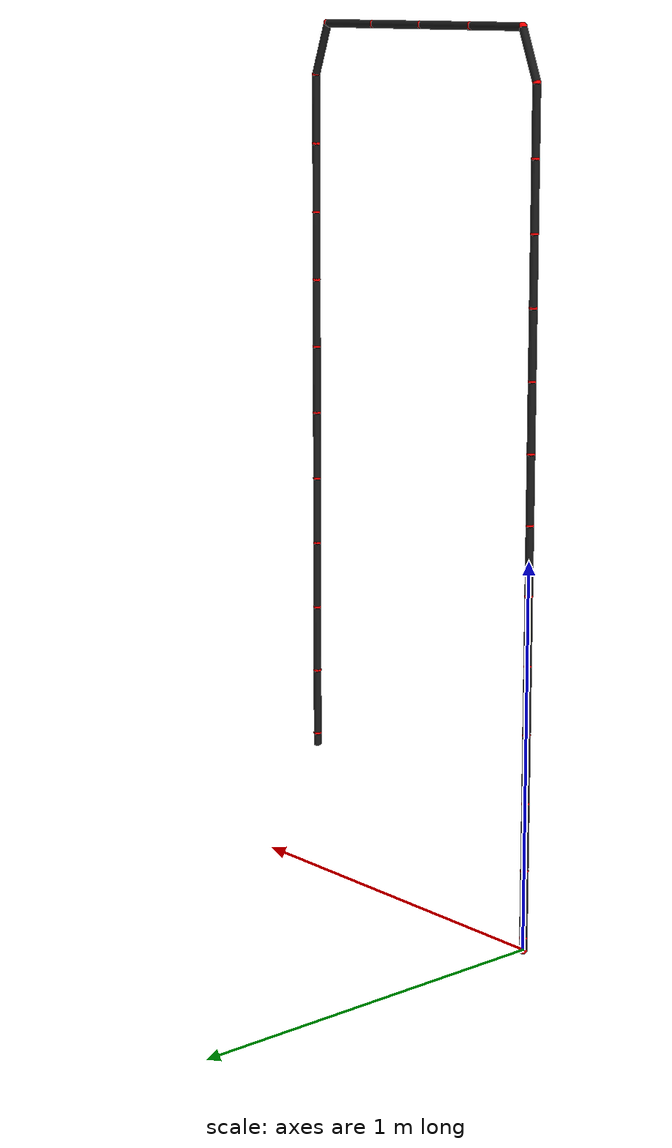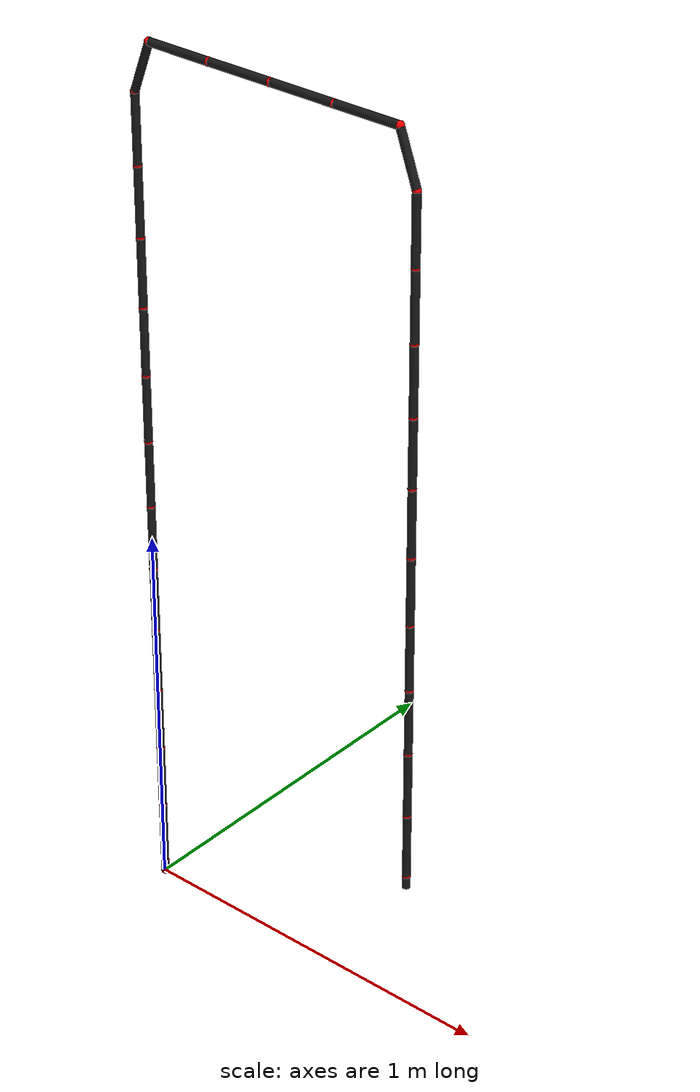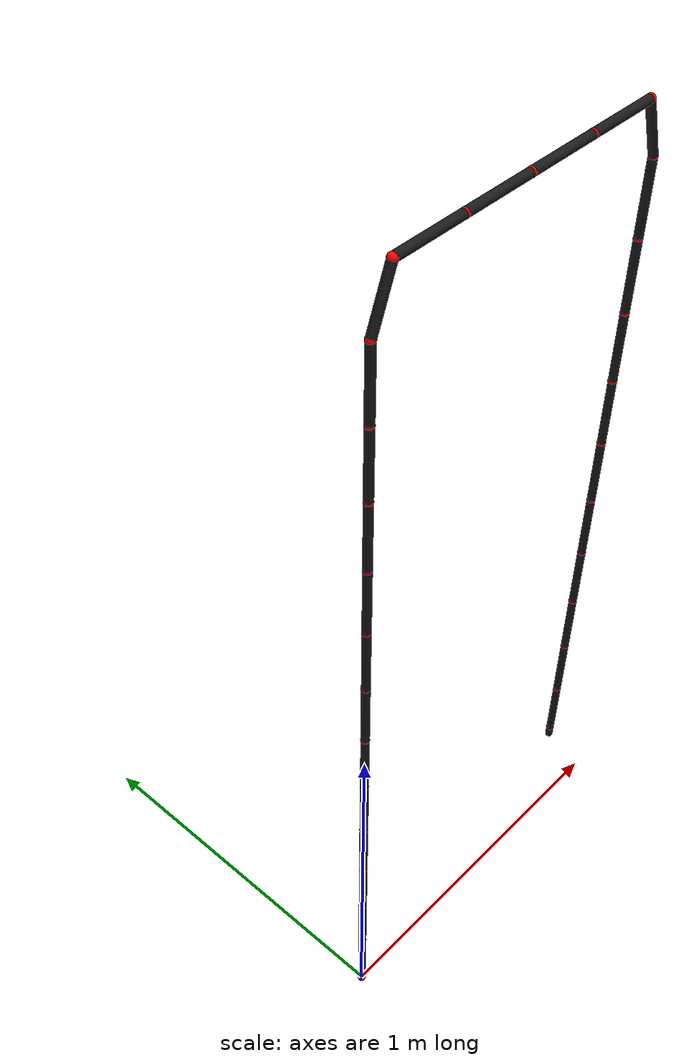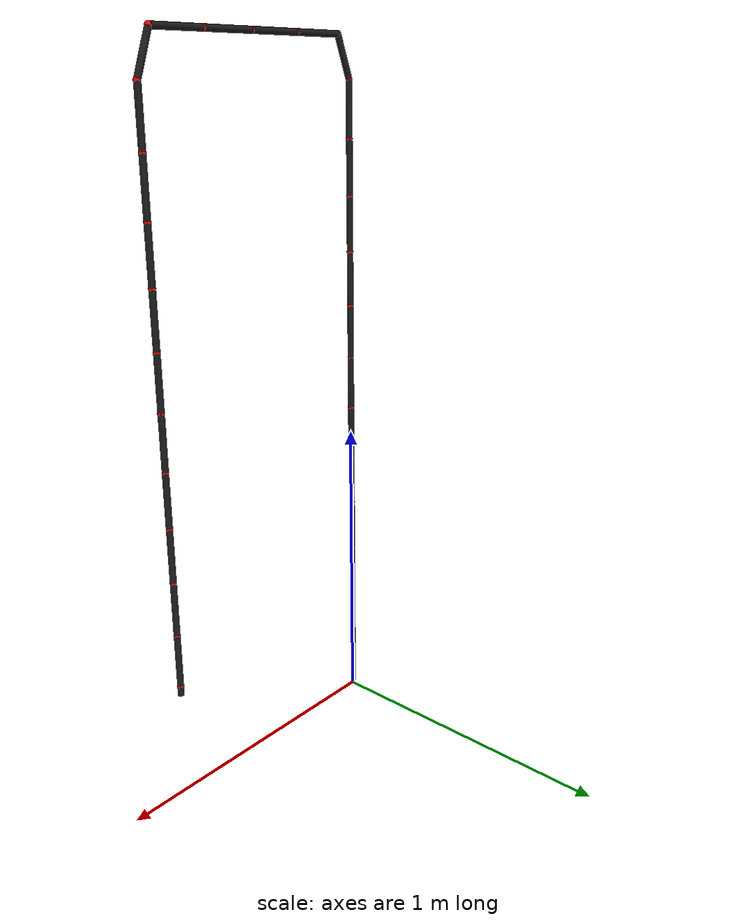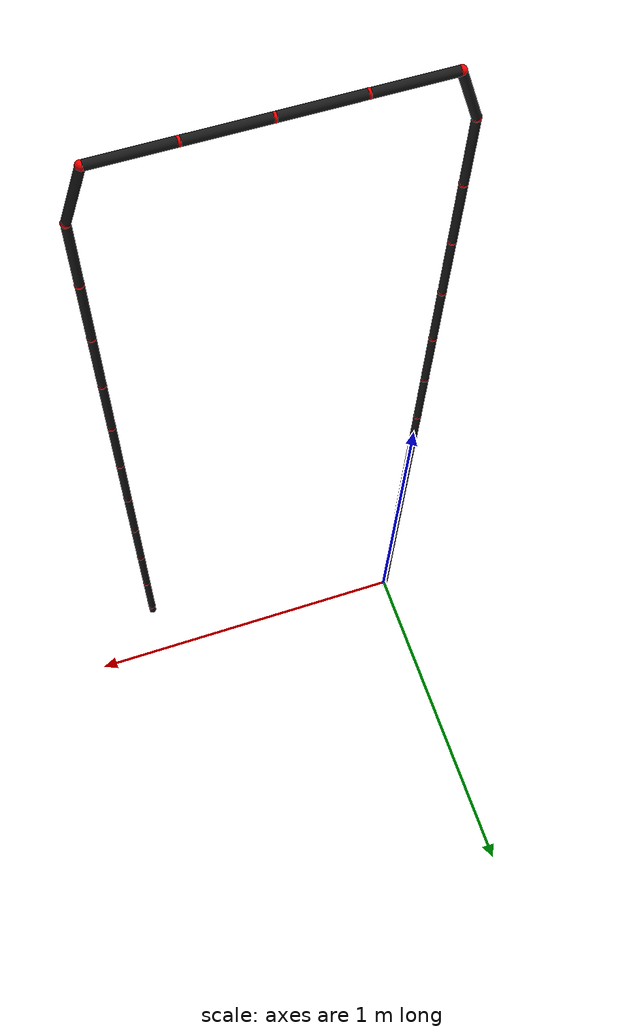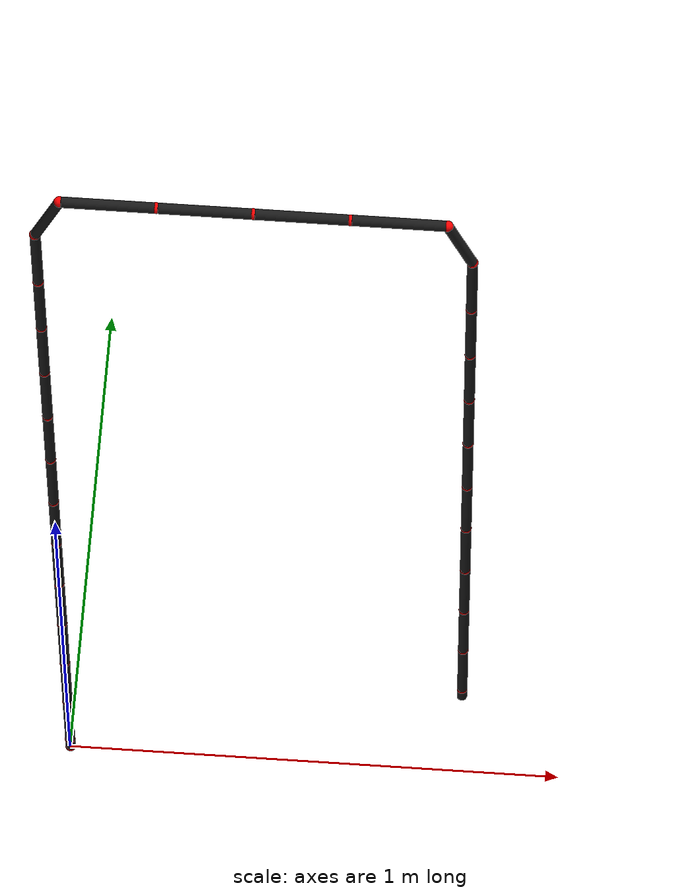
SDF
<?xml version="1.0" ?>
<sdf version="1.9">
    <model name="tether">
        <self_collide>true</self_collide>

        <link name="link_0">
            <pose>0.0000 0.0000 0.0167 0 0.0000 0.0000</pose>
            <velocity_decay>
                <linear>0.5</linear>
                <angular>0.5</angular>
            </velocity_decay>
            <inertial>
                <mass>0.02</mass>
                <inertia>
                    <ixx>0.1000</ixx><ixy>0</ixy><ixz>0</ixz>
                    <iyy>0.1000</iyy><iyz>0</iyz>
                    <izz>0.0100</izz>
                </inertia>
            </inertial>
            <visual name="visual_cylinder">
                <geometry><cylinder><radius>0.01</radius><length>0.0333</length></cylinder></geometry>
                <material><ambient>0.2 0.2 0.2 1</ambient><diffuse>0.1 0.1 0.1 1</diffuse></material>
            </visual>
            <visual name="visual_joint">
                <pose>0 0 -0.0167 0 0 0</pose>
                <geometry><sphere><radius>0.0105</radius></sphere></geometry>
                <material><ambient>1 0 0 1</ambient><diffuse>1 0 0 1</diffuse></material>
            </visual>
            <collision name="collision">
                <geometry><cylinder><radius>0.01</radius><length>0.0333</length></cylinder></geometry>
                <surface>
                    <contact><collide_bitmask>0x02</collide_bitmask></contact>
                </surface>
            </collision>
        </link>
        <link name="link_1">
            <pose>0.0000 0.0000 0.1214 0 0.0000 0.0000</pose>
            <velocity_decay>
                <linear>0.5</linear>
                <angular>0.5</angular>
            </velocity_decay>
            <inertial>
                <mass>0.02</mass>
                <inertia>
                    <ixx>0.1000</ixx><ixy>0</ixy><ixz>0</ixz>
                    <iyy>0.1000</iyy><iyz>0</iyz>
                    <izz>0.0100</izz>
                </inertia>
            </inertial>
            <visual name="visual_cylinder">
                <geometry><cylinder><radius>0.01</radius><length>0.1762</length></cylinder></geometry>
                <material><ambient>0.2 0.2 0.2 1</ambient><diffuse>0.1 0.1 0.1 1</diffuse></material>
            </visual>
            <visual name="visual_joint">
                <pose>0 0 -0.0881 0 0 0</pose>
                <geometry><sphere><radius>0.0105</radius></sphere></geometry>
                <material><ambient>1 0 0 1</ambient><diffuse>1 0 0 1</diffuse></material>
            </visual>
            <collision name="collision">
                <geometry><cylinder><radius>0.01</radius><length>0.1762</length></cylinder></geometry>
                <surface>
                    <contact><collide_bitmask>0x02</collide_bitmask></contact>
                </surface>
            </collision>
        </link>
        <joint name="joint_0_1" type="ball">
            <parent>link_0</parent>
            <child>link_1</child>
            <pose>0 0 -0.0881 0 0 0</pose>
            <dynamics>
                <damping>2.0</damping>
                <friction>0.1</friction>
            </dynamics>
        </joint>
        <link name="link_2">
            <pose>0.0000 0.0000 0.2976 0 0.0000 0.0000</pose>
            <velocity_decay>
                <linear>0.5</linear>
                <angular>0.5</angular>
            </velocity_decay>
            <inertial>
                <mass>0.02</mass>
                <inertia>
                    <ixx>0.1000</ixx><ixy>0</ixy><ixz>0</ixz>
                    <iyy>0.1000</iyy><iyz>0</iyz>
                    <izz>0.0100</izz>
                </inertia>
            </inertial>
            <visual name="visual_cylinder">
                <geometry><cylinder><radius>0.01</radius><length>0.1762</length></cylinder></geometry>
                <material><ambient>0.2 0.2 0.2 1</ambient><diffuse>0.1 0.1 0.1 1</diffuse></material>
            </visual>
            <visual name="visual_joint">
                <pose>0 0 -0.0881 0 0 0</pose>
                <geometry><sphere><radius>0.0105</radius></sphere></geometry>
                <material><ambient>1 0 0 1</ambient><diffuse>1 0 0 1</diffuse></material>
            </visual>
            <collision name="collision">
                <geometry><cylinder><radius>0.01</radius><length>0.1762</length></cylinder></geometry>
                <surface>
                    <contact><collide_bitmask>0x02</collide_bitmask></contact>
                </surface>
            </collision>
        </link>
        <joint name="joint_1_2" type="ball">
            <parent>link_1</parent>
            <child>link_2</child>
            <pose>0 0 -0.0881 0 0 0</pose>
            <dynamics>
                <damping>2.0</damping>
                <friction>0.1</friction>
            </dynamics>
        </joint>
        <link name="link_3">
            <pose>0.0000 0.0000 0.4738 0 0.0000 0.0000</pose>
            <velocity_decay>
                <linear>0.5</linear>
                <angular>0.5</angular>
            </velocity_decay>
            <inertial>
                <mass>0.02</mass>
                <inertia>
                    <ixx>0.1000</ixx><ixy>0</ixy><ixz>0</ixz>
                    <iyy>0.1000</iyy><iyz>0</iyz>
                    <izz>0.0100</izz>
                </inertia>
            </inertial>
            <visual name="visual_cylinder">
                <geometry><cylinder><radius>0.01</radius><length>0.1762</length></cylinder></geometry>
                <material><ambient>0.2 0.2 0.2 1</ambient><diffuse>0.1 0.1 0.1 1</diffuse></material>
            </visual>
            <visual name="visual_joint">
                <pose>0 0 -0.0881 0 0 0</pose>
                <geometry><sphere><radius>0.0105</radius></sphere></geometry>
                <material><ambient>1 0 0 1</ambient><diffuse>1 0 0 1</diffuse></material>
            </visual>
            <collision name="collision">
                <geometry><cylinder><radius>0.01</radius><length>0.1762</length></cylinder></geometry>
                <surface>
                    <contact><collide_bitmask>0x02</collide_bitmask></contact>
                </surface>
            </collision>
        </link>
        <joint name="joint_2_3" type="ball">
            <parent>link_2</parent>
            <child>link_3</child>
            <pose>0 0 -0.0881 0 0 0</pose>
            <dynamics>
                <damping>2.0</damping>
                <friction>0.1</friction>
            </dynamics>
        </joint>
        <link name="link_4">
            <pose>0.0000 0.0000 0.6500 0 0.0000 0.0000</pose>
            <velocity_decay>
                <linear>0.5</linear>
                <angular>0.5</angular>
            </velocity_decay>
            <inertial>
                <mass>0.02</mass>
                <inertia>
                    <ixx>0.1000</ixx><ixy>0</ixy><ixz>0</ixz>
                    <iyy>0.1000</iyy><iyz>0</iyz>
                    <izz>0.0100</izz>
                </inertia>
            </inertial>
            <visual name="visual_cylinder">
                <geometry><cylinder><radius>0.01</radius><length>0.1762</length></cylinder></geometry>
                <material><ambient>0.2 0.2 0.2 1</ambient><diffuse>0.1 0.1 0.1 1</diffuse></material>
            </visual>
            <visual name="visual_joint">
                <pose>0 0 -0.0881 0 0 0</pose>
                <geometry><sphere><radius>0.0105</radius></sphere></geometry>
                <material><ambient>1 0 0 1</ambient><diffuse>1 0 0 1</diffuse></material>
            </visual>
            <collision name="collision">
                <geometry><cylinder><radius>0.01</radius><length>0.1762</length></cylinder></geometry>
                <surface>
                    <contact><collide_bitmask>0x02</collide_bitmask></contact>
                </surface>
            </collision>
        </link>
        <joint name="joint_3_4" type="ball">
            <parent>link_3</parent>
            <child>link_4</child>
            <pose>0 0 -0.0881 0 0 0</pose>
            <dynamics>
                <damping>2.0</damping>
                <friction>0.1</friction>
            </dynamics>
        </joint>
        <link name="link_5">
            <pose>0.0000 0.0000 0.8262 0 0.0000 0.0000</pose>
            <velocity_decay>
                <linear>0.5</linear>
                <angular>0.5</angular>
            </velocity_decay>
            <inertial>
                <mass>0.02</mass>
                <inertia>
                    <ixx>0.1000</ixx><ixy>0</ixy><ixz>0</ixz>
                    <iyy>0.1000</iyy><iyz>0</iyz>
                    <izz>0.0100</izz>
                </inertia>
            </inertial>
            <visual name="visual_cylinder">
                <geometry><cylinder><radius>0.01</radius><length>0.1762</length></cylinder></geometry>
                <material><ambient>0.2 0.2 0.2 1</ambient><diffuse>0.1 0.1 0.1 1</diffuse></material>
            </visual>
            <visual name="visual_joint">
                <pose>0 0 -0.0881 0 0 0</pose>
                <geometry><sphere><radius>0.0105</radius></sphere></geometry>
                <material><ambient>1 0 0 1</ambient><diffuse>1 0 0 1</diffuse></material>
            </visual>
            <collision name="collision">
                <geometry><cylinder><radius>0.01</radius><length>0.1762</length></cylinder></geometry>
                <surface>
                    <contact><collide_bitmask>0x02</collide_bitmask></contact>
                </surface>
            </collision>
        </link>
        <joint name="joint_4_5" type="ball">
            <parent>link_4</parent>
            <child>link_5</child>
            <pose>0 0 -0.0881 0 0 0</pose>
            <dynamics>
                <damping>2.0</damping>
                <friction>0.1</friction>
            </dynamics>
        </joint>
        <link name="link_6">
            <pose>0.0000 0.0000 1.0024 0 0.0000 0.0000</pose>
            <velocity_decay>
                <linear>0.5</linear>
                <angular>0.5</angular>
            </velocity_decay>
            <inertial>
                <mass>0.02</mass>
                <inertia>
                    <ixx>0.1000</ixx><ixy>0</ixy><ixz>0</ixz>
                    <iyy>0.1000</iyy><iyz>0</iyz>
                    <izz>0.0100</izz>
                </inertia>
            </inertial>
            <visual name="visual_cylinder">
                <geometry><cylinder><radius>0.01</radius><length>0.1762</length></cylinder></geometry>
                <material><ambient>0.2 0.2 0.2 1</ambient><diffuse>0.1 0.1 0.1 1</diffuse></material>
            </visual>
            <visual name="visual_joint">
                <pose>0 0 -0.0881 0 0 0</pose>
                <geometry><sphere><radius>0.0105</radius></sphere></geometry>
                <material><ambient>1 0 0 1</ambient><diffuse>1 0 0 1</diffuse></material>
            </visual>
            <collision name="collision">
                <geometry><cylinder><radius>0.01</radius><length>0.1762</length></cylinder></geometry>
                <surface>
                    <contact><collide_bitmask>0x02</collide_bitmask></contact>
                </surface>
            </collision>
        </link>
        <joint name="joint_5_6" type="ball">
            <parent>link_5</parent>
            <child>link_6</child>
            <pose>0 0 -0.0881 0 0 0</pose>
            <dynamics>
                <damping>2.0</damping>
                <friction>0.1</friction>
            </dynamics>
        </joint>
        <link name="link_7">
            <pose>0.0000 0.0000 1.1786 0 0.0000 0.0000</pose>
            <velocity_decay>
                <linear>0.5</linear>
                <angular>0.5</angular>
            </velocity_decay>
            <inertial>
                <mass>0.02</mass>
                <inertia>
                    <ixx>0.1000</ixx><ixy>0</ixy><ixz>0</ixz>
                    <iyy>0.1000</iyy><iyz>0</iyz>
                    <izz>0.0100</izz>
                </inertia>
            </inertial>
            <visual name="visual_cylinder">
                <geometry><cylinder><radius>0.01</radius><length>0.1762</length></cylinder></geometry>
                <material><ambient>0.2 0.2 0.2 1</ambient><diffuse>0.1 0.1 0.1 1</diffuse></material>
            </visual>
            <visual name="visual_joint">
                <pose>0 0 -0.0881 0 0 0</pose>
                <geometry><sphere><radius>0.0105</radius></sphere></geometry>
                <material><ambient>1 0 0 1</ambient><diffuse>1 0 0 1</diffuse></material>
            </visual>
            <collision name="collision">
                <geometry><cylinder><radius>0.01</radius><length>0.1762</length></cylinder></geometry>
                <surface>
                    <contact><collide_bitmask>0x02</collide_bitmask></contact>
                </surface>
            </collision>
        </link>
        <joint name="joint_6_7" type="ball">
            <parent>link_6</parent>
            <child>link_7</child>
            <pose>0 0 -0.0881 0 0 0</pose>
            <dynamics>
                <damping>2.0</damping>
                <friction>0.1</friction>
            </dynamics>
        </joint>
        <link name="link_8">
            <pose>0.0000 0.0000 1.3548 0 0.0000 0.0000</pose>
            <velocity_decay>
                <linear>0.5</linear>
                <angular>0.5</angular>
            </velocity_decay>
            <inertial>
                <mass>0.02</mass>
                <inertia>
                    <ixx>0.1000</ixx><ixy>0</ixy><ixz>0</ixz>
                    <iyy>0.1000</iyy><iyz>0</iyz>
                    <izz>0.0100</izz>
                </inertia>
            </inertial>
            <visual name="visual_cylinder">
                <geometry><cylinder><radius>0.01</radius><length>0.1762</length></cylinder></geometry>
                <material><ambient>0.2 0.2 0.2 1</ambient><diffuse>0.1 0.1 0.1 1</diffuse></material>
            </visual>
            <visual name="visual_joint">
                <pose>0 0 -0.0881 0 0 0</pose>
                <geometry><sphere><radius>0.0105</radius></sphere></geometry>
                <material><ambient>1 0 0 1</ambient><diffuse>1 0 0 1</diffuse></material>
            </visual>
            <collision name="collision">
                <geometry><cylinder><radius>0.01</radius><length>0.1762</length></cylinder></geometry>
                <surface>
                    <contact><collide_bitmask>0x02</collide_bitmask></contact>
                </surface>
            </collision>
        </link>
        <joint name="joint_7_8" type="ball">
            <parent>link_7</parent>
            <child>link_8</child>
            <pose>0 0 -0.0881 0 0 0</pose>
            <dynamics>
                <damping>2.0</damping>
                <friction>0.1</friction>
            </dynamics>
        </joint>
        <link name="link_9">
            <pose>0.0000 0.0000 1.5310 0 0.0000 0.0000</pose>
            <velocity_decay>
                <linear>0.5</linear>
                <angular>0.5</angular>
            </velocity_decay>
            <inertial>
                <mass>0.02</mass>
                <inertia>
                    <ixx>0.1000</ixx><ixy>0</ixy><ixz>0</ixz>
                    <iyy>0.1000</iyy><iyz>0</iyz>
                    <izz>0.0100</izz>
                </inertia>
            </inertial>
            <visual name="visual_cylinder">
                <geometry><cylinder><radius>0.01</radius><length>0.1762</length></cylinder></geometry>
                <material><ambient>0.2 0.2 0.2 1</ambient><diffuse>0.1 0.1 0.1 1</diffuse></material>
            </visual>
            <visual name="visual_joint">
                <pose>0 0 -0.0881 0 0 0</pose>
                <geometry><sphere><radius>0.0105</radius></sphere></geometry>
                <material><ambient>1 0 0 1</ambient><diffuse>1 0 0 1</diffuse></material>
            </visual>
            <collision name="collision">
                <geometry><cylinder><radius>0.01</radius><length>0.1762</length></cylinder></geometry>
                <surface>
                    <contact><collide_bitmask>0x02</collide_bitmask></contact>
                </surface>
            </collision>
        </link>
        <joint name="joint_8_9" type="ball">
            <parent>link_8</parent>
            <child>link_9</child>
            <pose>0 0 -0.0881 0 0 0</pose>
            <dynamics>
                <damping>2.0</damping>
                <friction>0.1</friction>
            </dynamics>
        </joint>
        <link name="link_10">
            <pose>0.0000 0.0000 1.7071 0 0.0000 0.0000</pose>
            <velocity_decay>
                <linear>0.5</linear>
                <angular>0.5</angular>
            </velocity_decay>
            <inertial>
                <mass>0.02</mass>
                <inertia>
                    <ixx>0.1000</ixx><ixy>0</ixy><ixz>0</ixz>
                    <iyy>0.1000</iyy><iyz>0</iyz>
                    <izz>0.0100</izz>
                </inertia>
            </inertial>
            <visual name="visual_cylinder">
                <geometry><cylinder><radius>0.01</radius><length>0.1762</length></cylinder></geometry>
                <material><ambient>0.2 0.2 0.2 1</ambient><diffuse>0.1 0.1 0.1 1</diffuse></material>
            </visual>
            <visual name="visual_joint">
                <pose>0 0 -0.0881 0 0 0</pose>
                <geometry><sphere><radius>0.0105</radius></sphere></geometry>
                <material><ambient>1 0 0 1</ambient><diffuse>1 0 0 1</diffuse></material>
            </visual>
            <collision name="collision">
                <geometry><cylinder><radius>0.01</radius><length>0.1762</length></cylinder></geometry>
                <surface>
                    <contact><collide_bitmask>0x02</collide_bitmask></contact>
                </surface>
            </collision>
        </link>
        <joint name="joint_9_10" type="ball">
            <parent>link_9</parent>
            <child>link_10</child>
            <pose>0 0 -0.0881 0 0 0</pose>
            <dynamics>
                <damping>2.0</damping>
                <friction>0.1</friction>
            </dynamics>
        </joint>
        <link name="link_11">
            <pose>0.0000 0.0000 1.8833 0 0.0000 0.0000</pose>
            <velocity_decay>
                <linear>0.5</linear>
                <angular>0.5</angular>
            </velocity_decay>
            <inertial>
                <mass>0.02</mass>
                <inertia>
                    <ixx>0.1000</ixx><ixy>0</ixy><ixz>0</ixz>
                    <iyy>0.1000</iyy><iyz>0</iyz>
                    <izz>0.0100</izz>
                </inertia>
            </inertial>
            <visual name="visual_cylinder">
                <geometry><cylinder><radius>0.01</radius><length>0.1762</length></cylinder></geometry>
                <material><ambient>0.2 0.2 0.2 1</ambient><diffuse>0.1 0.1 0.1 1</diffuse></material>
            </visual>
            <visual name="visual_joint">
                <pose>0 0 -0.0881 0 0 0</pose>
                <geometry><sphere><radius>0.0105</radius></sphere></geometry>
                <material><ambient>1 0 0 1</ambient><diffuse>1 0 0 1</diffuse></material>
            </visual>
            <collision name="collision">
                <geometry><cylinder><radius>0.01</radius><length>0.1762</length></cylinder></geometry>
                <surface>
                    <contact><collide_bitmask>0x02</collide_bitmask></contact>
                </surface>
            </collision>
        </link>
        <joint name="joint_10_11" type="ball">
            <parent>link_10</parent>
            <child>link_11</child>
            <pose>0 0 -0.0881 0 0 0</pose>
            <dynamics>
                <damping>2.0</damping>
                <friction>0.1</friction>
            </dynamics>
        </joint>
        <link name="link_12">
            <pose>0.0000 0.0000 2.0595 0 0.0000 0.0000</pose>
            <velocity_decay>
                <linear>0.5</linear>
                <angular>0.5</angular>
            </velocity_decay>
            <inertial>
                <mass>0.02</mass>
                <inertia>
                    <ixx>0.1000</ixx><ixy>0</ixy><ixz>0</ixz>
                    <iyy>0.1000</iyy><iyz>0</iyz>
                    <izz>0.0100</izz>
                </inertia>
            </inertial>
            <visual name="visual_cylinder">
                <geometry><cylinder><radius>0.01</radius><length>0.1762</length></cylinder></geometry>
                <material><ambient>0.2 0.2 0.2 1</ambient><diffuse>0.1 0.1 0.1 1</diffuse></material>
            </visual>
            <visual name="visual_joint">
                <pose>0 0 -0.0881 0 0 0</pose>
                <geometry><sphere><radius>0.0105</radius></sphere></geometry>
                <material><ambient>1 0 0 1</ambient><diffuse>1 0 0 1</diffuse></material>
            </visual>
            <collision name="collision">
                <geometry><cylinder><radius>0.01</radius><length>0.1762</length></cylinder></geometry>
                <surface>
                    <contact><collide_bitmask>0x02</collide_bitmask></contact>
                </surface>
            </collision>
        </link>
        <joint name="joint_11_12" type="ball">
            <parent>link_11</parent>
            <child>link_12</child>
            <pose>0 0 -0.0881 0 0 0</pose>
            <dynamics>
                <damping>2.0</damping>
                <friction>0.1</friction>
            </dynamics>
        </joint>
        <link name="link_13">
            <pose>0.0244 0.0000 2.2113 0 0.3659 0.0000</pose>
            <velocity_decay>
                <linear>0.5</linear>
                <angular>0.5</angular>
            </velocity_decay>
            <inertial>
                <mass>0.02</mass>
                <inertia>
                    <ixx>0.1000</ixx><ixy>0</ixy><ixz>0</ixz>
                    <iyy>0.1000</iyy><iyz>0</iyz>
                    <izz>0.0100</izz>
                </inertia>
            </inertial>
            <visual name="visual_cylinder">
                <geometry><cylinder><radius>0.01</radius><length>0.1364</length></cylinder></geometry>
                <material><ambient>0.2 0.2 0.2 1</ambient><diffuse>0.1 0.1 0.1 1</diffuse></material>
            </visual>
            <visual name="visual_joint">
                <pose>0 0 -0.0682 0 0 0</pose>
                <geometry><sphere><radius>0.0105</radius></sphere></geometry>
                <material><ambient>1 0 0 1</ambient><diffuse>1 0 0 1</diffuse></material>
            </visual>
            <collision name="collision">
                <geometry><cylinder><radius>0.01</radius><length>0.1364</length></cylinder></geometry>
                <surface>
                    <contact><collide_bitmask>0x02</collide_bitmask></contact>
                </surface>
            </collision>
        </link>
        <joint name="joint_12_13" type="ball">
            <parent>link_12</parent>
            <child>link_13</child>
            <pose>0 0 -0.0682 0 0 0</pose>
            <dynamics>
                <damping>2.0</damping>
                <friction>0.1</friction>
            </dynamics>
        </joint>
        <link name="link_14">
            <pose>0.1369 0.0000 2.2750 0 1.5708 0.0000</pose>
            <velocity_decay>
                <linear>0.5</linear>
                <angular>0.5</angular>
            </velocity_decay>
            <inertial>
                <mass>0.02</mass>
                <inertia>
                    <ixx>0.1000</ixx><ixy>0</ixy><ixz>0</ixz>
                    <iyy>0.1000</iyy><iyz>0</iyz>
                    <izz>0.0100</izz>
                </inertia>
            </inertial>
            <visual name="visual_cylinder">
                <geometry><cylinder><radius>0.01</radius><length>0.1762</length></cylinder></geometry>
                <material><ambient>0.2 0.2 0.2 1</ambient><diffuse>0.1 0.1 0.1 1</diffuse></material>
            </visual>
            <visual name="visual_joint">
                <pose>0 0 -0.0881 0 0 0</pose>
                <geometry><sphere><radius>0.0105</radius></sphere></geometry>
                <material><ambient>1 0 0 1</ambient><diffuse>1 0 0 1</diffuse></material>
            </visual>
            <collision name="collision">
                <geometry><cylinder><radius>0.01</radius><length>0.1762</length></cylinder></geometry>
                <surface>
                    <contact><collide_bitmask>0x02</collide_bitmask></contact>
                </surface>
            </collision>
        </link>
        <joint name="joint_13_14" type="ball">
            <parent>link_13</parent>
            <child>link_14</child>
            <pose>0 0 -0.0881 0 0 0</pose>
            <dynamics>
                <damping>2.0</damping>
                <friction>0.1</friction>
            </dynamics>
        </joint>
        <link name="link_15">
            <pose>0.3131 0.0000 2.2750 0 1.5708 0.0000</pose>
            <velocity_decay>
                <linear>0.5</linear>
                <angular>0.5</angular>
            </velocity_decay>
            <inertial>
                <mass>0.02</mass>
                <inertia>
                    <ixx>0.1000</ixx><ixy>0</ixy><ixz>0</ixz>
                    <iyy>0.1000</iyy><iyz>0</iyz>
                    <izz>0.0100</izz>
                </inertia>
            </inertial>
            <visual name="visual_cylinder">
                <geometry><cylinder><radius>0.01</radius><length>0.1762</length></cylinder></geometry>
                <material><ambient>0.2 0.2 0.2 1</ambient><diffuse>0.1 0.1 0.1 1</diffuse></material>
            </visual>
            <visual name="visual_joint">
                <pose>0 0 -0.0881 0 0 0</pose>
                <geometry><sphere><radius>0.0105</radius></sphere></geometry>
                <material><ambient>1 0 0 1</ambient><diffuse>1 0 0 1</diffuse></material>
            </visual>
            <collision name="collision">
                <geometry><cylinder><radius>0.01</radius><length>0.1762</length></cylinder></geometry>
                <surface>
                    <contact><collide_bitmask>0x02</collide_bitmask></contact>
                </surface>
            </collision>
        </link>
        <joint name="joint_14_15" type="ball">
            <parent>link_14</parent>
            <child>link_15</child>
            <pose>0 0 -0.0881 0 0 0</pose>
            <dynamics>
                <damping>2.0</damping>
                <friction>0.1</friction>
            </dynamics>
        </joint>
        <link name="link_16">
            <pose>0.4893 0.0000 2.2750 0 1.5708 0.0000</pose>
            <velocity_decay>
                <linear>0.5</linear>
                <angular>0.5</angular>
            </velocity_decay>
            <inertial>
                <mass>0.02</mass>
                <inertia>
                    <ixx>0.1000</ixx><ixy>0</ixy><ixz>0</ixz>
                    <iyy>0.1000</iyy><iyz>0</iyz>
                    <izz>0.0100</izz>
                </inertia>
            </inertial>
            <visual name="visual_cylinder">
                <geometry><cylinder><radius>0.01</radius><length>0.1762</length></cylinder></geometry>
                <material><ambient>0.2 0.2 0.2 1</ambient><diffuse>0.1 0.1 0.1 1</diffuse></material>
            </visual>
            <visual name="visual_joint">
                <pose>0 0 -0.0881 0 0 0</pose>
                <geometry><sphere><radius>0.0105</radius></sphere></geometry>
                <material><ambient>1 0 0 1</ambient><diffuse>1 0 0 1</diffuse></material>
            </visual>
            <collision name="collision">
                <geometry><cylinder><radius>0.01</radius><length>0.1762</length></cylinder></geometry>
                <surface>
                    <contact><collide_bitmask>0x02</collide_bitmask></contact>
                </surface>
            </collision>
        </link>
        <joint name="joint_15_16" type="ball">
            <parent>link_15</parent>
            <child>link_16</child>
            <pose>0 0 -0.0881 0 0 0</pose>
            <dynamics>
                <damping>2.0</damping>
                <friction>0.1</friction>
            </dynamics>
        </joint>
        <link name="link_17">
            <pose>0.6655 0.0000 2.2750 0 1.5708 0.0000</pose>
            <velocity_decay>
                <linear>0.5</linear>
                <angular>0.5</angular>
            </velocity_decay>
            <inertial>
                <mass>0.02</mass>
                <inertia>
                    <ixx>0.1000</ixx><ixy>0</ixy><ixz>0</ixz>
                    <iyy>0.1000</iyy><iyz>0</iyz>
                    <izz>0.0100</izz>
                </inertia>
            </inertial>
            <visual name="visual_cylinder">
                <geometry><cylinder><radius>0.01</radius><length>0.1762</length></cylinder></geometry>
                <material><ambient>0.2 0.2 0.2 1</ambient><diffuse>0.1 0.1 0.1 1</diffuse></material>
            </visual>
            <visual name="visual_joint">
                <pose>0 0 -0.0881 0 0 0</pose>
                <geometry><sphere><radius>0.0105</radius></sphere></geometry>
                <material><ambient>1 0 0 1</ambient><diffuse>1 0 0 1</diffuse></material>
            </visual>
            <collision name="collision">
                <geometry><cylinder><radius>0.01</radius><length>0.1762</length></cylinder></geometry>
                <surface>
                    <contact><collide_bitmask>0x02</collide_bitmask></contact>
                </surface>
            </collision>
        </link>
        <joint name="joint_16_17" type="ball">
            <parent>link_16</parent>
            <child>link_17</child>
            <pose>0 0 -0.0881 0 0 0</pose>
            <dynamics>
                <damping>2.0</damping>
                <friction>0.1</friction>
            </dynamics>
        </joint>
        <link name="link_18">
            <pose>0.7768 0.0000 2.2101 0 2.7980 0.0000</pose>
            <velocity_decay>
                <linear>0.5</linear>
                <angular>0.5</angular>
            </velocity_decay>
            <inertial>
                <mass>0.02</mass>
                <inertia>
                    <ixx>0.1000</ixx><ixy>0</ixy><ixz>0</ixz>
                    <iyy>0.1000</iyy><iyz>0</iyz>
                    <izz>0.0100</izz>
                </inertia>
            </inertial>
            <visual name="visual_cylinder">
                <geometry><cylinder><radius>0.01</radius><length>0.1378</length></cylinder></geometry>
                <material><ambient>0.2 0.2 0.2 1</ambient><diffuse>0.1 0.1 0.1 1</diffuse></material>
            </visual>
            <visual name="visual_joint">
                <pose>0 0 -0.0689 0 0 0</pose>
                <geometry><sphere><radius>0.0105</radius></sphere></geometry>
                <material><ambient>1 0 0 1</ambient><diffuse>1 0 0 1</diffuse></material>
            </visual>
            <collision name="collision">
                <geometry><cylinder><radius>0.01</radius><length>0.1378</length></cylinder></geometry>
                <surface>
                    <contact><collide_bitmask>0x02</collide_bitmask></contact>
                </surface>
            </collision>
        </link>
        <joint name="joint_17_18" type="ball">
            <parent>link_17</parent>
            <child>link_18</child>
            <pose>0 0 -0.0689 0 0 0</pose>
            <dynamics>
                <damping>2.0</damping>
                <friction>0.1</friction>
            </dynamics>
        </joint>
        <link name="link_19">
            <pose>0.8000 0.0000 2.0571 0 3.1416 0.0000</pose>
            <velocity_decay>
                <linear>0.5</linear>
                <angular>0.5</angular>
            </velocity_decay>
            <inertial>
                <mass>0.02</mass>
                <inertia>
                    <ixx>0.1000</ixx><ixy>0</ixy><ixz>0</ixz>
                    <iyy>0.1000</iyy><iyz>0</iyz>
                    <izz>0.0100</izz>
                </inertia>
            </inertial>
            <visual name="visual_cylinder">
                <geometry><cylinder><radius>0.01</radius><length>0.1762</length></cylinder></geometry>
                <material><ambient>0.2 0.2 0.2 1</ambient><diffuse>0.1 0.1 0.1 1</diffuse></material>
            </visual>
            <visual name="visual_joint">
                <pose>0 0 -0.0881 0 0 0</pose>
                <geometry><sphere><radius>0.0105</radius></sphere></geometry>
                <material><ambient>1 0 0 1</ambient><diffuse>1 0 0 1</diffuse></material>
            </visual>
            <collision name="collision">
                <geometry><cylinder><radius>0.01</radius><length>0.1762</length></cylinder></geometry>
                <surface>
                    <contact><collide_bitmask>0x02</collide_bitmask></contact>
                </surface>
            </collision>
        </link>
        <joint name="joint_18_19" type="ball">
            <parent>link_18</parent>
            <child>link_19</child>
            <pose>0 0 -0.0881 0 0 0</pose>
            <dynamics>
                <damping>2.0</damping>
                <friction>0.1</friction>
            </dynamics>
        </joint>
        <link name="link_20">
            <pose>0.8000 0.0000 1.8810 0 3.1416 0.0000</pose>
            <velocity_decay>
                <linear>0.5</linear>
                <angular>0.5</angular>
            </velocity_decay>
            <inertial>
                <mass>0.02</mass>
                <inertia>
                    <ixx>0.1000</ixx><ixy>0</ixy><ixz>0</ixz>
                    <iyy>0.1000</iyy><iyz>0</iyz>
                    <izz>0.0100</izz>
                </inertia>
            </inertial>
            <visual name="visual_cylinder">
                <geometry><cylinder><radius>0.01</radius><length>0.1762</length></cylinder></geometry>
                <material><ambient>0.2 0.2 0.2 1</ambient><diffuse>0.1 0.1 0.1 1</diffuse></material>
            </visual>
            <visual name="visual_joint">
                <pose>0 0 -0.0881 0 0 0</pose>
                <geometry><sphere><radius>0.0105</radius></sphere></geometry>
                <material><ambient>1 0 0 1</ambient><diffuse>1 0 0 1</diffuse></material>
            </visual>
            <collision name="collision">
                <geometry><cylinder><radius>0.01</radius><length>0.1762</length></cylinder></geometry>
                <surface>
                    <contact><collide_bitmask>0x02</collide_bitmask></contact>
                </surface>
            </collision>
        </link>
        <joint name="joint_19_20" type="ball">
            <parent>link_19</parent>
            <child>link_20</child>
            <pose>0 0 -0.0881 0 0 0</pose>
            <dynamics>
                <damping>2.0</damping>
                <friction>0.1</friction>
            </dynamics>
        </joint>
        <link name="link_21">
            <pose>0.8000 0.0000 1.7048 0 3.1416 0.0000</pose>
            <velocity_decay>
                <linear>0.5</linear>
                <angular>0.5</angular>
            </velocity_decay>
            <inertial>
                <mass>0.02</mass>
                <inertia>
                    <ixx>0.1000</ixx><ixy>0</ixy><ixz>0</ixz>
                    <iyy>0.1000</iyy><iyz>0</iyz>
                    <izz>0.0100</izz>
                </inertia>
            </inertial>
            <visual name="visual_cylinder">
                <geometry><cylinder><radius>0.01</radius><length>0.1762</length></cylinder></geometry>
                <material><ambient>0.2 0.2 0.2 1</ambient><diffuse>0.1 0.1 0.1 1</diffuse></material>
            </visual>
            <visual name="visual_joint">
                <pose>0 0 -0.0881 0 0 0</pose>
                <geometry><sphere><radius>0.0105</radius></sphere></geometry>
                <material><ambient>1 0 0 1</ambient><diffuse>1 0 0 1</diffuse></material>
            </visual>
            <collision name="collision">
                <geometry><cylinder><radius>0.01</radius><length>0.1762</length></cylinder></geometry>
                <surface>
                    <contact><collide_bitmask>0x02</collide_bitmask></contact>
                </surface>
            </collision>
        </link>
        <joint name="joint_20_21" type="ball">
            <parent>link_20</parent>
            <child>link_21</child>
            <pose>0 0 -0.0881 0 0 0</pose>
            <dynamics>
                <damping>2.0</damping>
                <friction>0.1</friction>
            </dynamics>
        </joint>
        <link name="link_22">
            <pose>0.8000 0.0000 1.5286 0 3.1416 0.0000</pose>
            <velocity_decay>
                <linear>0.5</linear>
                <angular>0.5</angular>
            </velocity_decay>
            <inertial>
                <mass>0.02</mass>
                <inertia>
                    <ixx>0.1000</ixx><ixy>0</ixy><ixz>0</ixz>
                    <iyy>0.1000</iyy><iyz>0</iyz>
                    <izz>0.0100</izz>
                </inertia>
            </inertial>
            <visual name="visual_cylinder">
                <geometry><cylinder><radius>0.01</radius><length>0.1762</length></cylinder></geometry>
                <material><ambient>0.2 0.2 0.2 1</ambient><diffuse>0.1 0.1 0.1 1</diffuse></material>
            </visual>
            <visual name="visual_joint">
                <pose>0 0 -0.0881 0 0 0</pose>
                <geometry><sphere><radius>0.0105</radius></sphere></geometry>
                <material><ambient>1 0 0 1</ambient><diffuse>1 0 0 1</diffuse></material>
            </visual>
            <collision name="collision">
                <geometry><cylinder><radius>0.01</radius><length>0.1762</length></cylinder></geometry>
                <surface>
                    <contact><collide_bitmask>0x02</collide_bitmask></contact>
                </surface>
            </collision>
        </link>
        <joint name="joint_21_22" type="ball">
            <parent>link_21</parent>
            <child>link_22</child>
            <pose>0 0 -0.0881 0 0 0</pose>
            <dynamics>
                <damping>2.0</damping>
                <friction>0.1</friction>
            </dynamics>
        </joint>
        <link name="link_23">
            <pose>0.8000 0.0000 1.3524 0 3.1416 0.0000</pose>
            <velocity_decay>
                <linear>0.5</linear>
                <angular>0.5</angular>
            </velocity_decay>
            <inertial>
                <mass>0.02</mass>
                <inertia>
                    <ixx>0.1000</ixx><ixy>0</ixy><ixz>0</ixz>
                    <iyy>0.1000</iyy><iyz>0</iyz>
                    <izz>0.0100</izz>
                </inertia>
            </inertial>
            <visual name="visual_cylinder">
                <geometry><cylinder><radius>0.01</radius><length>0.1762</length></cylinder></geometry>
                <material><ambient>0.2 0.2 0.2 1</ambient><diffuse>0.1 0.1 0.1 1</diffuse></material>
            </visual>
            <visual name="visual_joint">
                <pose>0 0 -0.0881 0 0 0</pose>
                <geometry><sphere><radius>0.0105</radius></sphere></geometry>
                <material><ambient>1 0 0 1</ambient><diffuse>1 0 0 1</diffuse></material>
            </visual>
            <collision name="collision">
                <geometry><cylinder><radius>0.01</radius><length>0.1762</length></cylinder></geometry>
                <surface>
                    <contact><collide_bitmask>0x02</collide_bitmask></contact>
                </surface>
            </collision>
        </link>
        <joint name="joint_22_23" type="ball">
            <parent>link_22</parent>
            <child>link_23</child>
            <pose>0 0 -0.0881 0 0 0</pose>
            <dynamics>
                <damping>2.0</damping>
                <friction>0.1</friction>
            </dynamics>
        </joint>
        <link name="link_24">
            <pose>0.8000 0.0000 1.1762 0 3.1416 0.0000</pose>
            <velocity_decay>
                <linear>0.5</linear>
                <angular>0.5</angular>
            </velocity_decay>
            <inertial>
                <mass>0.02</mass>
                <inertia>
                    <ixx>0.1000</ixx><ixy>0</ixy><ixz>0</ixz>
                    <iyy>0.1000</iyy><iyz>0</iyz>
                    <izz>0.0100</izz>
                </inertia>
            </inertial>
            <visual name="visual_cylinder">
                <geometry><cylinder><radius>0.01</radius><length>0.1762</length></cylinder></geometry>
                <material><ambient>0.2 0.2 0.2 1</ambient><diffuse>0.1 0.1 0.1 1</diffuse></material>
            </visual>
            <visual name="visual_joint">
                <pose>0 0 -0.0881 0 0 0</pose>
                <geometry><sphere><radius>0.0105</radius></sphere></geometry>
                <material><ambient>1 0 0 1</ambient><diffuse>1 0 0 1</diffuse></material>
            </visual>
            <collision name="collision">
                <geometry><cylinder><radius>0.01</radius><length>0.1762</length></cylinder></geometry>
                <surface>
                    <contact><collide_bitmask>0x02</collide_bitmask></contact>
                </surface>
            </collision>
        </link>
        <joint name="joint_23_24" type="ball">
            <parent>link_23</parent>
            <child>link_24</child>
            <pose>0 0 -0.0881 0 0 0</pose>
            <dynamics>
                <damping>2.0</damping>
                <friction>0.1</friction>
            </dynamics>
        </joint>
        <link name="link_25">
            <pose>0.8000 0.0000 1.0000 0 3.1416 0.0000</pose>
            <velocity_decay>
                <linear>0.5</linear>
                <angular>0.5</angular>
            </velocity_decay>
            <inertial>
                <mass>0.02</mass>
                <inertia>
                    <ixx>0.1000</ixx><ixy>0</ixy><ixz>0</ixz>
                    <iyy>0.1000</iyy><iyz>0</iyz>
                    <izz>0.0100</izz>
                </inertia>
            </inertial>
            <visual name="visual_cylinder">
                <geometry><cylinder><radius>0.01</radius><length>0.1762</length></cylinder></geometry>
                <material><ambient>0.2 0.2 0.2 1</ambient><diffuse>0.1 0.1 0.1 1</diffuse></material>
            </visual>
            <visual name="visual_joint">
                <pose>0 0 -0.0881 0 0 0</pose>
                <geometry><sphere><radius>0.0105</radius></sphere></geometry>
                <material><ambient>1 0 0 1</ambient><diffuse>1 0 0 1</diffuse></material>
            </visual>
            <collision name="collision">
                <geometry><cylinder><radius>0.01</radius><length>0.1762</length></cylinder></geometry>
                <surface>
                    <contact><collide_bitmask>0x02</collide_bitmask></contact>
                </surface>
            </collision>
        </link>
        <joint name="joint_24_25" type="ball">
            <parent>link_24</parent>
            <child>link_25</child>
            <pose>0 0 -0.0881 0 0 0</pose>
            <dynamics>
                <damping>2.0</damping>
                <friction>0.1</friction>
            </dynamics>
        </joint>
        <link name="link_26">
            <pose>0.8000 0.0000 0.8238 0 3.1416 0.0000</pose>
            <velocity_decay>
                <linear>0.5</linear>
                <angular>0.5</angular>
            </velocity_decay>
            <inertial>
                <mass>0.02</mass>
                <inertia>
                    <ixx>0.1000</ixx><ixy>0</ixy><ixz>0</ixz>
                    <iyy>0.1000</iyy><iyz>0</iyz>
                    <izz>0.0100</izz>
                </inertia>
            </inertial>
            <visual name="visual_cylinder">
                <geometry><cylinder><radius>0.01</radius><length>0.1762</length></cylinder></geometry>
                <material><ambient>0.2 0.2 0.2 1</ambient><diffuse>0.1 0.1 0.1 1</diffuse></material>
            </visual>
            <visual name="visual_joint">
                <pose>0 0 -0.0881 0 0 0</pose>
                <geometry><sphere><radius>0.0105</radius></sphere></geometry>
                <material><ambient>1 0 0 1</ambient><diffuse>1 0 0 1</diffuse></material>
            </visual>
            <collision name="collision">
                <geometry><cylinder><radius>0.01</radius><length>0.1762</length></cylinder></geometry>
                <surface>
                    <contact><collide_bitmask>0x02</collide_bitmask></contact>
                </surface>
            </collision>
        </link>
        <joint name="joint_25_26" type="ball">
            <parent>link_25</parent>
            <child>link_26</child>
            <pose>0 0 -0.0881 0 0 0</pose>
            <dynamics>
                <damping>2.0</damping>
                <friction>0.1</friction>
            </dynamics>
        </joint>
        <link name="link_27">
            <pose>0.8000 0.0000 0.6476 0 3.1416 0.0000</pose>
            <velocity_decay>
                <linear>0.5</linear>
                <angular>0.5</angular>
            </velocity_decay>
            <inertial>
                <mass>0.02</mass>
                <inertia>
                    <ixx>0.1000</ixx><ixy>0</ixy><ixz>0</ixz>
                    <iyy>0.1000</iyy><iyz>0</iyz>
                    <izz>0.0100</izz>
                </inertia>
            </inertial>
            <visual name="visual_cylinder">
                <geometry><cylinder><radius>0.01</radius><length>0.1762</length></cylinder></geometry>
                <material><ambient>0.2 0.2 0.2 1</ambient><diffuse>0.1 0.1 0.1 1</diffuse></material>
            </visual>
            <visual name="visual_joint">
                <pose>0 0 -0.0881 0 0 0</pose>
                <geometry><sphere><radius>0.0105</radius></sphere></geometry>
                <material><ambient>1 0 0 1</ambient><diffuse>1 0 0 1</diffuse></material>
            </visual>
            <collision name="collision">
                <geometry><cylinder><radius>0.01</radius><length>0.1762</length></cylinder></geometry>
                <surface>
                    <contact><collide_bitmask>0x02</collide_bitmask></contact>
                </surface>
            </collision>
        </link>
        <joint name="joint_26_27" type="ball">
            <parent>link_26</parent>
            <child>link_27</child>
            <pose>0 0 -0.0881 0 0 0</pose>
            <dynamics>
                <damping>2.0</damping>
                <friction>0.1</friction>
            </dynamics>
        </joint>
        <link name="link_28">
            <pose>0.8000 0.0000 0.4714 0 3.1416 0.0000</pose>
            <velocity_decay>
                <linear>0.5</linear>
                <angular>0.5</angular>
            </velocity_decay>
            <inertial>
                <mass>0.02</mass>
                <inertia>
                    <ixx>0.1000</ixx><ixy>0</ixy><ixz>0</ixz>
                    <iyy>0.1000</iyy><iyz>0</iyz>
                    <izz>0.0100</izz>
                </inertia>
            </inertial>
            <visual name="visual_cylinder">
                <geometry><cylinder><radius>0.01</radius><length>0.1762</length></cylinder></geometry>
                <material><ambient>0.2 0.2 0.2 1</ambient><diffuse>0.1 0.1 0.1 1</diffuse></material>
            </visual>
            <visual name="visual_joint">
                <pose>0 0 -0.0881 0 0 0</pose>
                <geometry><sphere><radius>0.0105</radius></sphere></geometry>
                <material><ambient>1 0 0 1</ambient><diffuse>1 0 0 1</diffuse></material>
            </visual>
            <collision name="collision">
                <geometry><cylinder><radius>0.01</radius><length>0.1762</length></cylinder></geometry>
                <surface>
                    <contact><collide_bitmask>0x02</collide_bitmask></contact>
                </surface>
            </collision>
        </link>
        <joint name="joint_27_28" type="ball">
            <parent>link_27</parent>
            <child>link_28</child>
            <pose>0 0 -0.0881 0 0 0</pose>
            <dynamics>
                <damping>2.0</damping>
                <friction>0.1</friction>
            </dynamics>
        </joint>
        <link name="link_29">
            <pose>0.8000 0.0000 0.3667 0 3.1416 0.0000</pose>
            <velocity_decay>
                <linear>0.5</linear>
                <angular>0.5</angular>
            </velocity_decay>
            <inertial>
                <mass>0.02</mass>
                <inertia>
                    <ixx>0.1000</ixx><ixy>0</ixy><ixz>0</ixz>
                    <iyy>0.1000</iyy><iyz>0</iyz>
                    <izz>0.0100</izz>
                </inertia>
            </inertial>
            <visual name="visual_cylinder">
                <geometry><cylinder><radius>0.01</radius><length>0.0333</length></cylinder></geometry>
                <material><ambient>0.2 0.2 0.2 1</ambient><diffuse>0.1 0.1 0.1 1</diffuse></material>
            </visual>
            <visual name="visual_joint">
                <pose>0 0 -0.0167 0 0 0</pose>
                <geometry><sphere><radius>0.0105</radius></sphere></geometry>
                <material><ambient>1 0 0 1</ambient><diffuse>1 0 0 1</diffuse></material>
            </visual>
            <collision name="collision">
                <geometry><cylinder><radius>0.01</radius><length>0.0333</length></cylinder></geometry>
                <surface>
                    <contact><collide_bitmask>0x02</collide_bitmask></contact>
                </surface>
            </collision>
        </link>
        <joint name="joint_28_29" type="ball">
            <parent>link_28</parent>
            <child>link_29</child>
            <pose>0 0 -0.0167 0 0 0</pose>
            <dynamics>
                <damping>2.0</damping>
                <friction>0.1</friction>
            </dynamics>
        </joint>
    </model>
</sdf>
